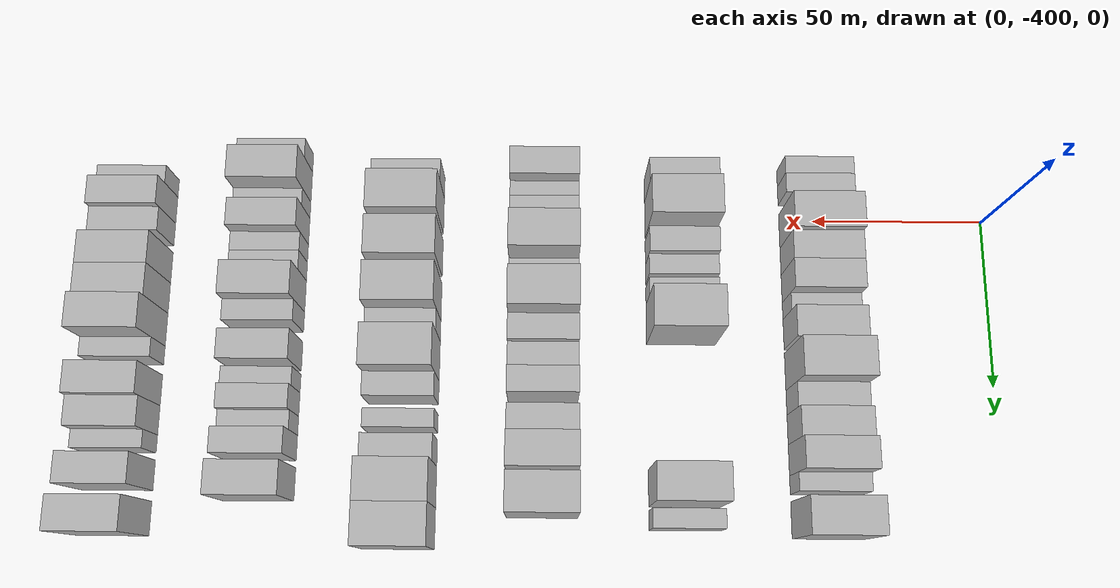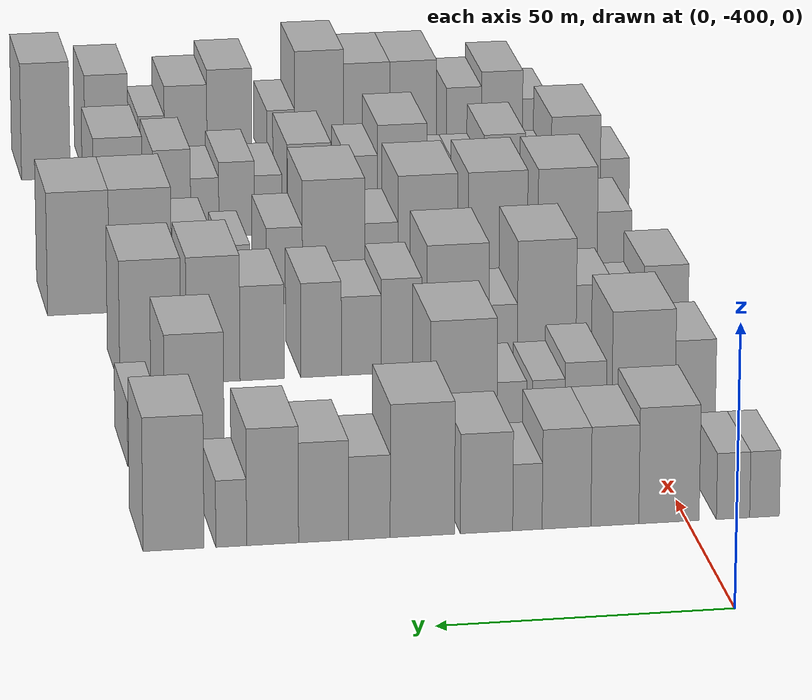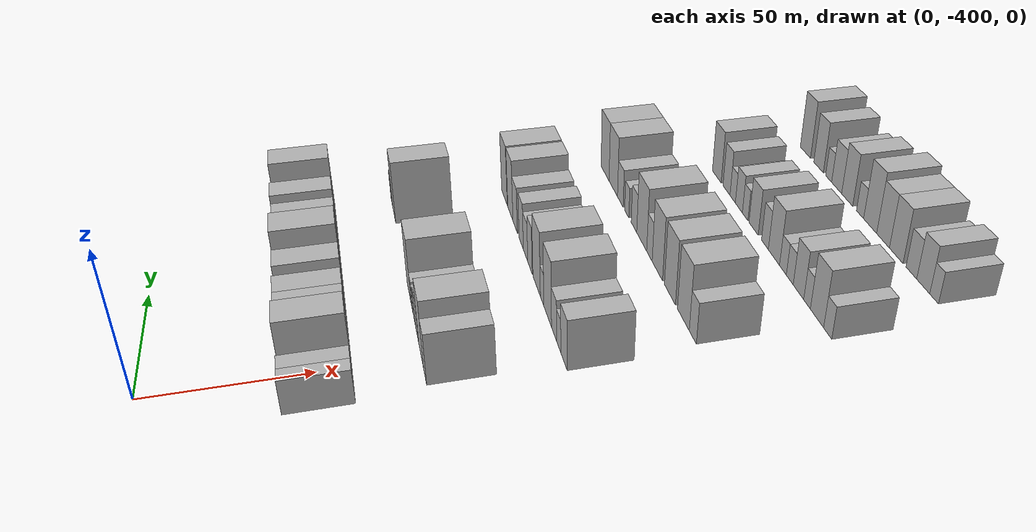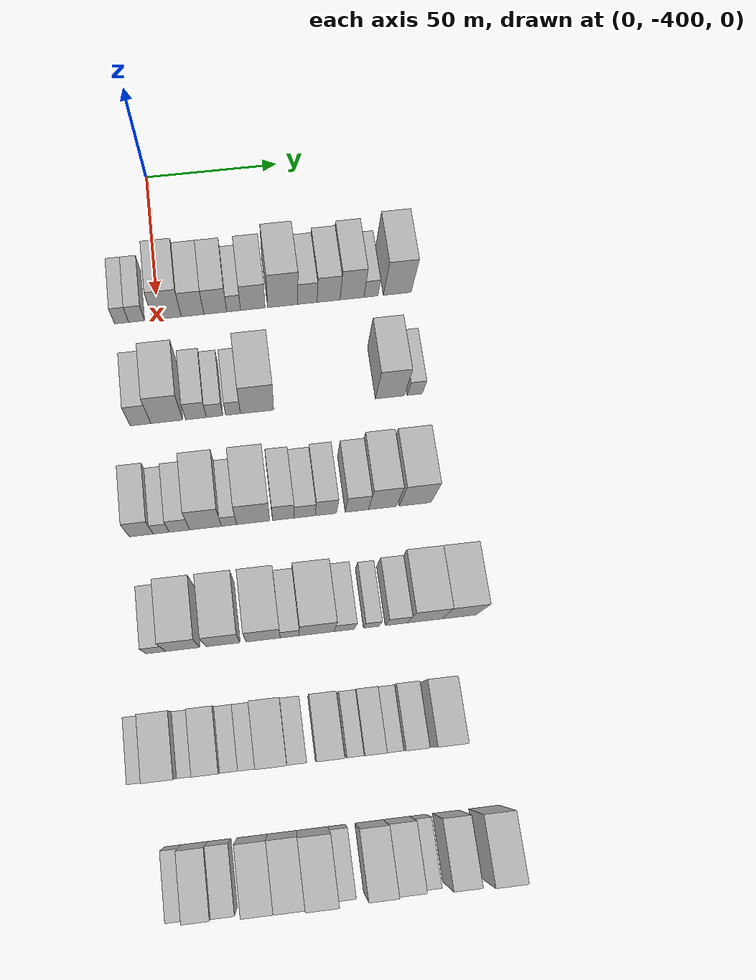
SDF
<sdf version="1.6">
 <world name="default">
  <model name="building_24">
   <static>1</static>
   <pose>50.0000 -413.3652 0 0.000000 0.000000 0.000000</pose>
   <link name="link">
    <pose>0 0 6.00 0 0 0</pose>
    <collision name="collision"><geometry><box><size>20.0000 5.1637 12.0000</size></box></geometry></collision>
    <visual name="visual">
     <cast_shadows>0</cast_shadows>
     <geometry><box><size>20.0000 5.1637 12.0000</size></box></geometry>
     <material>
      <script>
       <uri>model://HANNAS_wall/materials/scripts</uri>
       <uri>model://HANNAS_wall/materials/textures</uri>
       <name>vrc/HANNAS_wall</name>
      </script>
     </material>
    </visual>
   </link>
  </model>
  <model name="building_25">
   <static>1</static>
   <pose>50.0000 -407.8908 0 0.000000 0.000000 0.000000</pose>
   <link name="link">
    <pose>0 0 6.00 0 0 0</pose>
    <collision name="collision"><geometry><box><size>20.0000 5.7851 12.0000</size></box></geometry></collision>
    <visual name="visual">
     <cast_shadows>0</cast_shadows>
     <geometry><box><size>20.0000 5.7851 12.0000</size></box></geometry>
     <material>
      <script>
       <uri>model://HANNAS_wall/materials/scripts</uri>
       <uri>model://HANNAS_wall/materials/textures</uri>
       <name>vrc/HANNAS_wall</name>
      </script>
     </material>
    </visual>
   </link>
  </model>
  <model name="building_26">
   <static>1</static>
   <pose>50.0000 -396.7628 0 0.000000 0.000000 0.000000</pose>
   <link name="link">
    <pose>0 0 10.50 0 0 0</pose>
    <collision name="collision"><geometry><box><size>20.0000 10.4707 21.0000</size></box></geometry></collision>
    <visual name="visual">
     <cast_shadows>0</cast_shadows>
     <geometry><box><size>20.0000 10.4707 21.0000</size></box></geometry>
     <material>
      <script>
       <uri>model://HANNAS_wall/materials/scripts</uri>
       <uri>model://HANNAS_wall/materials/textures</uri>
       <name>vrc/HANNAS_wall</name>
      </script>
     </material>
    </visual>
   </link>
  </model>
  <model name="building_27">
   <static>1</static>
   <pose>50.0000 -387.3897 0 0.000000 0.000000 0.000000</pose>
   <link name="link">
    <pose>0 0 9.00 0 0 0</pose>
    <collision name="collision"><geometry><box><size>20.0000 8.2756 18.0000</size></box></geometry></collision>
    <visual name="visual">
     <cast_shadows>0</cast_shadows>
     <geometry><box><size>20.0000 8.2756 18.0000</size></box></geometry>
     <material>
      <script>
       <uri>model://HANNAS_wall/materials/scripts</uri>
       <uri>model://HANNAS_wall/materials/textures</uri>
       <name>vrc/HANNAS_wall</name>
      </script>
     </material>
    </visual>
   </link>
  </model>
  <model name="building_28">
   <static>1</static>
   <pose>50.0000 -379.0439 0 0.000000 0.000000 0.000000</pose>
   <link name="link">
    <pose>0 0 9.00 0 0 0</pose>
    <collision name="collision"><geometry><box><size>20.0000 8.4158 18.0000</size></box></geometry></collision>
    <visual name="visual">
     <cast_shadows>0</cast_shadows>
     <geometry><box><size>20.0000 8.4158 18.0000</size></box></geometry>
     <material>
      <script>
       <uri>model://HANNAS_wall/materials/scripts</uri>
       <uri>model://HANNAS_wall/materials/textures</uri>
       <name>vrc/HANNAS_wall</name>
      </script>
     </material>
    </visual>
   </link>
  </model>
  <model name="building_29">
   <static>1</static>
   <pose>50.0000 -372.3038 0 0.000000 0.000000 0.000000</pose>
   <link name="link">
    <pose>0 0 6.00 0 0 0</pose>
    <collision name="collision"><geometry><box><size>20.0000 5.0644 12.0000</size></box></geometry></collision>
    <visual name="visual">
     <cast_shadows>0</cast_shadows>
     <geometry><box><size>20.0000 5.0644 12.0000</size></box></geometry>
     <material>
      <script>
       <uri>model://HANNAS_wall/materials/scripts</uri>
       <uri>model://HANNAS_wall/materials/textures</uri>
       <name>vrc/HANNAS_wall</name>
      </script>
     </material>
    </visual>
   </link>
  </model>
  <model name="building_30">
   <static>1</static>
   <pose>50.0000 -365.2722 0 0.000000 0.000000 0.000000</pose>
   <link name="link">
    <pose>0 0 9.00 0 0 0</pose>
    <collision name="collision"><geometry><box><size>20.0000 8.9988 18.0000</size></box></geometry></collision>
    <visual name="visual">
     <cast_shadows>0</cast_shadows>
     <geometry><box><size>20.0000 8.9988 18.0000</size></box></geometry>
     <material>
      <script>
       <uri>model://HANNAS_wall/materials/scripts</uri>
       <uri>model://HANNAS_wall/materials/textures</uri>
       <name>vrc/HANNAS_wall</name>
      </script>
     </material>
    </visual>
   </link>
  </model>
  <model name="building_31">
   <static>1</static>
   <pose>50.0000 -354.2544 0 0.000000 0.000000 0.000000</pose>
   <link name="link">
    <pose>0 0 12.00 0 0 0</pose>
    <collision name="collision"><geometry><box><size>20.0000 11.0368 24.0000</size></box></geometry></collision>
    <visual name="visual">
     <cast_shadows>0</cast_shadows>
     <geometry><box><size>20.0000 11.0368 24.0000</size></box></geometry>
     <material>
      <script>
       <uri>model://HANNAS_wall/materials/scripts</uri>
       <uri>model://HANNAS_wall/materials/textures</uri>
       <name>vrc/HANNAS_wall</name>
      </script>
     </material>
    </visual>
   </link>
  </model>
  <model name="building_32">
   <static>1</static>
   <pose>50.0000 -345.1771 0 0.000000 0.000000 0.000000</pose>
   <link name="link">
    <pose>0 0 7.50 0 0 0</pose>
    <collision name="collision"><geometry><box><size>20.0000 7.1176 15.0000</size></box></geometry></collision>
    <visual name="visual">
     <cast_shadows>0</cast_shadows>
     <geometry><box><size>20.0000 7.1176 15.0000</size></box></geometry>
     <material>
      <script>
       <uri>model://HANNAS_wall/materials/scripts</uri>
       <uri>model://HANNAS_wall/materials/textures</uri>
       <name>vrc/HANNAS_wall</name>
      </script>
     </material>
    </visual>
   </link>
  </model>
  <model name="building_33">
   <static>1</static>
   <pose>50.0000 -337.3446 0 0.000000 0.000000 0.000000</pose>
   <link name="link">
    <pose>0 0 9.00 0 0 0</pose>
    <collision name="collision"><geometry><box><size>20.0000 8.5474 18.0000</size></box></geometry></collision>
    <visual name="visual">
     <cast_shadows>0</cast_shadows>
     <geometry><box><size>20.0000 8.5474 18.0000</size></box></geometry>
     <material>
      <script>
       <uri>model://HANNAS_wall/materials/scripts</uri>
       <uri>model://HANNAS_wall/materials/textures</uri>
       <name>vrc/HANNAS_wall</name>
      </script>
     </material>
    </visual>
   </link>
  </model>
  <model name="building_34">
   <static>1</static>
   <pose>50.0000 -328.6471 0 0.000000 0.000000 0.000000</pose>
   <link name="link">
    <pose>0 0 10.50 0 0 0</pose>
    <collision name="collision"><geometry><box><size>20.0000 8.8475 21.0000</size></box></geometry></collision>
    <visual name="visual">
     <cast_shadows>0</cast_shadows>
     <geometry><box><size>20.0000 8.8475 21.0000</size></box></geometry>
     <material>
      <script>
       <uri>model://HANNAS_wall/materials/scripts</uri>
       <uri>model://HANNAS_wall/materials/textures</uri>
       <name>vrc/HANNAS_wall</name>
      </script>
     </material>
    </visual>
   </link>
  </model>
  <model name="building_35">
   <static>1</static>
   <pose>50.0000 -321.6063 0 0.000000 0.000000 0.000000</pose>
   <link name="link">
    <pose>0 0 6.00 0 0 0</pose>
    <collision name="collision"><geometry><box><size>20.0000 5.2341 12.0000</size></box></geometry></collision>
    <visual name="visual">
     <cast_shadows>0</cast_shadows>
     <geometry><box><size>20.0000 5.2341 12.0000</size></box></geometry>
     <material>
      <script>
       <uri>model://HANNAS_wall/materials/scripts</uri>
       <uri>model://HANNAS_wall/materials/textures</uri>
       <name>vrc/HANNAS_wall</name>
      </script>
     </material>
    </visual>
   </link>
  </model>
  <model name="building_36">
   <static>1</static>
   <pose>50.0000 -311.8154 0 0.000000 0.000000 0.000000</pose>
   <link name="link">
    <pose>0 0 12.00 0 0 0</pose>
    <collision name="collision"><geometry><box><size>20.0000 10.3477 24.0000</size></box></geometry></collision>
    <visual name="visual">
     <cast_shadows>0</cast_shadows>
     <geometry><box><size>20.0000 10.3477 24.0000</size></box></geometry>
     <material>
      <script>
       <uri>model://HANNAS_wall/materials/scripts</uri>
       <uri>model://HANNAS_wall/materials/textures</uri>
       <name>vrc/HANNAS_wall</name>
      </script>
     </material>
    </visual>
   </link>
  </model>
  <model name="building_169">
   <static>1</static>
   <pose>90.0000 -409.2732 0 0.000000 0.000000 0.000000</pose>
   <link name="link">
    <pose>0 0 9.00 0 0 0</pose>
    <collision name="collision"><geometry><box><size>20.0000 7.2763 18.0000</size></box></geometry></collision>
    <visual name="visual">
     <cast_shadows>0</cast_shadows>
     <geometry><box><size>20.0000 7.2763 18.0000</size></box></geometry>
     <material>
      <script>
       <uri>model://HANNAS_wall/materials/scripts</uri>
       <uri>model://HANNAS_wall/materials/textures</uri>
       <name>vrc/HANNAS_wall</name>
      </script>
     </material>
    </visual>
   </link>
  </model>
  <model name="building_170">
   <static>1</static>
   <pose>90.0000 -399.9908 0 0.000000 0.000000 0.000000</pose>
   <link name="link">
    <pose>0 0 12.00 0 0 0</pose>
    <collision name="collision"><geometry><box><size>20.0000 11.2884 24.0000</size></box></geometry></collision>
    <visual name="visual">
     <cast_shadows>0</cast_shadows>
     <geometry><box><size>20.0000 11.2884 24.0000</size></box></geometry>
     <material>
      <script>
       <uri>model://HANNAS_wall/materials/scripts</uri>
       <uri>model://HANNAS_wall/materials/textures</uri>
       <name>vrc/HANNAS_wall</name>
      </script>
     </material>
    </visual>
   </link>
  </model>
  <model name="building_171">
   <static>1</static>
   <pose>90.0000 -389.6672 0 0.000000 0.000000 0.000000</pose>
   <link name="link">
    <pose>0 0 7.50 0 0 0</pose>
    <collision name="collision"><geometry><box><size>20.0000 7.3587 15.0000</size></box></geometry></collision>
    <visual name="visual">
     <cast_shadows>0</cast_shadows>
     <geometry><box><size>20.0000 7.3587 15.0000</size></box></geometry>
     <material>
      <script>
       <uri>model://HANNAS_wall/materials/scripts</uri>
       <uri>model://HANNAS_wall/materials/textures</uri>
       <name>vrc/HANNAS_wall</name>
      </script>
     </material>
    </visual>
   </link>
  </model>
  <model name="building_172">
   <static>1</static>
   <pose>90.0000 -383.0584 0 0.000000 0.000000 0.000000</pose>
   <link name="link">
    <pose>0 0 6.00 0 0 0</pose>
    <collision name="collision"><geometry><box><size>20.0000 5.8589 12.0000</size></box></geometry></collision>
    <visual name="visual">
     <cast_shadows>0</cast_shadows>
     <geometry><box><size>20.0000 5.8589 12.0000</size></box></geometry>
     <material>
      <script>
       <uri>model://HANNAS_wall/materials/scripts</uri>
       <uri>model://HANNAS_wall/materials/textures</uri>
       <name>vrc/HANNAS_wall</name>
      </script>
     </material>
    </visual>
   </link>
  </model>
  <model name="building_173">
   <static>1</static>
   <pose>90.0000 -376.4973 0 0.000000 0.000000 0.000000</pose>
   <link name="link">
    <pose>0 0 6.00 0 0 0</pose>
    <collision name="collision"><geometry><box><size>20.0000 5.2635 12.0000</size></box></geometry></collision>
    <visual name="visual">
     <cast_shadows>0</cast_shadows>
     <geometry><box><size>20.0000 5.2635 12.0000</size></box></geometry>
     <material>
      <script>
       <uri>model://HANNAS_wall/materials/scripts</uri>
       <uri>model://HANNAS_wall/materials/textures</uri>
       <name>vrc/HANNAS_wall</name>
      </script>
     </material>
    </visual>
   </link>
  </model>
  <model name="building_174">
   <static>1</static>
   <pose>90.0000 -367.9628 0 0.000000 0.000000 0.000000</pose>
   <link name="link">
    <pose>0 0 12.00 0 0 0</pose>
    <collision name="collision"><geometry><box><size>20.0000 11.8055 24.0000</size></box></geometry></collision>
    <visual name="visual">
     <cast_shadows>0</cast_shadows>
     <geometry><box><size>20.0000 11.8055 24.0000</size></box></geometry>
     <material>
      <script>
       <uri>model://HANNAS_wall/materials/scripts</uri>
       <uri>model://HANNAS_wall/materials/textures</uri>
       <name>vrc/HANNAS_wall</name>
      </script>
     </material>
    </visual>
   </link>
  </model>
  <model name="building_175">
   <static>1</static>
   <pose>90.0000 -320.4007 0 0.000000 0.000000 0.000000</pose>
   <link name="link">
    <pose>0 0 12.00 0 0 0</pose>
    <collision name="collision"><geometry><box><size>20.0000 10.4395 24.0000</size></box></geometry></collision>
    <visual name="visual">
     <cast_shadows>0</cast_shadows>
     <geometry><box><size>20.0000 10.4395 24.0000</size></box></geometry>
     <material>
      <script>
       <uri>model://HANNAS_wall/materials/scripts</uri>
       <uri>model://HANNAS_wall/materials/textures</uri>
       <name>vrc/HANNAS_wall</name>
      </script>
     </material>
    </visual>
   </link>
  </model>
  <model name="building_176">
   <static>1</static>
   <pose>90.0000 -311.4446 0 0.000000 0.000000 0.000000</pose>
   <link name="link">
    <pose>0 0 6.00 0 0 0</pose>
    <collision name="collision"><geometry><box><size>20.0000 5.4726 12.0000</size></box></geometry></collision>
    <visual name="visual">
     <cast_shadows>0</cast_shadows>
     <geometry><box><size>20.0000 5.4726 12.0000</size></box></geometry>
     <material>
      <script>
       <uri>model://HANNAS_wall/materials/scripts</uri>
       <uri>model://HANNAS_wall/materials/textures</uri>
       <name>vrc/HANNAS_wall</name>
      </script>
     </material>
    </visual>
   </link>
  </model>
  <model name="building_302">
   <static>1</static>
   <pose>130.0000 -411.8672 0 0.000000 0.000000 0.000000</pose>
   <link name="link">
    <pose>0 0 9.00 0 0 0</pose>
    <collision name="collision"><geometry><box><size>20.0000 8.1740 18.0000</size></box></geometry></collision>
    <visual name="visual">
     <cast_shadows>0</cast_shadows>
     <geometry><box><size>20.0000 8.1740 18.0000</size></box></geometry>
     <material>
      <script>
       <uri>model://HANNAS_wall/materials/scripts</uri>
       <uri>model://HANNAS_wall/materials/textures</uri>
       <name>vrc/HANNAS_wall</name>
      </script>
     </material>
    </visual>
   </link>
  </model>
  <model name="building_303">
   <static>1</static>
   <pose>130.0000 -405.0318 0 0.000000 0.000000 0.000000</pose>
   <link name="link">
    <pose>0 0 6.00 0 0 0</pose>
    <collision name="collision"><geometry><box><size>20.0000 5.4968 12.0000</size></box></geometry></collision>
    <visual name="visual">
     <cast_shadows>0</cast_shadows>
     <geometry><box><size>20.0000 5.4968 12.0000</size></box></geometry>
     <material>
      <script>
       <uri>model://HANNAS_wall/materials/scripts</uri>
       <uri>model://HANNAS_wall/materials/textures</uri>
       <name>vrc/HANNAS_wall</name>
      </script>
     </material>
    </visual>
   </link>
  </model>
  <model name="building_304">
   <static>1</static>
   <pose>130.0000 -398.7842 0 0.000000 0.000000 0.000000</pose>
   <link name="link">
    <pose>0 0 7.50 0 0 0</pose>
    <collision name="collision"><geometry><box><size>20.0000 6.9984 15.0000</size></box></geometry></collision>
    <visual name="visual">
     <cast_shadows>0</cast_shadows>
     <geometry><box><size>20.0000 6.9984 15.0000</size></box></geometry>
     <material>
      <script>
       <uri>model://HANNAS_wall/materials/scripts</uri>
       <uri>model://HANNAS_wall/materials/textures</uri>
       <name>vrc/HANNAS_wall</name>
      </script>
     </material>
    </visual>
   </link>
  </model>
  <model name="building_305">
   <static>1</static>
   <pose>130.0000 -389.8746 0 0.000000 0.000000 0.000000</pose>
   <link name="link">
    <pose>0 0 12.00 0 0 0</pose>
    <collision name="collision"><geometry><box><size>20.0000 10.8209 24.0000</size></box></geometry></collision>
    <visual name="visual">
     <cast_shadows>0</cast_shadows>
     <geometry><box><size>20.0000 10.8209 24.0000</size></box></geometry>
     <material>
      <script>
       <uri>model://HANNAS_wall/materials/scripts</uri>
       <uri>model://HANNAS_wall/materials/textures</uri>
       <name>vrc/HANNAS_wall</name>
      </script>
     </material>
    </visual>
   </link>
  </model>
  <model name="building_306">
   <static>1</static>
   <pose>130.0000 -381.8418 0 0.000000 0.000000 0.000000</pose>
   <link name="link">
    <pose>0 0 6.00 0 0 0</pose>
    <collision name="collision"><geometry><box><size>20.0000 5.2448 12.0000</size></box></geometry></collision>
    <visual name="visual">
     <cast_shadows>0</cast_shadows>
     <geometry><box><size>20.0000 5.2448 12.0000</size></box></geometry>
     <material>
      <script>
       <uri>model://HANNAS_wall/materials/scripts</uri>
       <uri>model://HANNAS_wall/materials/textures</uri>
       <name>vrc/HANNAS_wall</name>
      </script>
     </material>
    </visual>
   </link>
  </model>
  <model name="building_307">
   <static>1</static>
   <pose>130.0000 -373.5435 0 0.000000 0.000000 0.000000</pose>
   <link name="link">
    <pose>0 0 12.00 0 0 0</pose>
    <collision name="collision"><geometry><box><size>20.0000 11.3518 24.0000</size></box></geometry></collision>
    <visual name="visual">
     <cast_shadows>0</cast_shadows>
     <geometry><box><size>20.0000 11.3518 24.0000</size></box></geometry>
     <material>
      <script>
       <uri>model://HANNAS_wall/materials/scripts</uri>
       <uri>model://HANNAS_wall/materials/textures</uri>
       <name>vrc/HANNAS_wall</name>
      </script>
     </material>
    </visual>
   </link>
  </model>
  <model name="building_308">
   <static>1</static>
   <pose>130.0000 -363.1718 0 0.000000 0.000000 0.000000</pose>
   <link name="link">
    <pose>0 0 9.00 0 0 0</pose>
    <collision name="collision"><geometry><box><size>20.0000 7.3916 18.0000</size></box></geometry></collision>
    <visual name="visual">
     <cast_shadows>0</cast_shadows>
     <geometry><box><size>20.0000 7.3916 18.0000</size></box></geometry>
     <material>
      <script>
       <uri>model://HANNAS_wall/materials/scripts</uri>
       <uri>model://HANNAS_wall/materials/textures</uri>
       <name>vrc/HANNAS_wall</name>
      </script>
     </material>
    </visual>
   </link>
  </model>
  <model name="building_309">
   <static>1</static>
   <pose>130.0000 -355.8360 0 0.000000 0.000000 0.000000</pose>
   <link name="link">
    <pose>0 0 7.50 0 0 0</pose>
    <collision name="collision"><geometry><box><size>20.0000 7.2801 15.0000</size></box></geometry></collision>
    <visual name="visual">
     <cast_shadows>0</cast_shadows>
     <geometry><box><size>20.0000 7.2801 15.0000</size></box></geometry>
     <material>
      <script>
       <uri>model://HANNAS_wall/materials/scripts</uri>
       <uri>model://HANNAS_wall/materials/textures</uri>
       <name>vrc/HANNAS_wall</name>
      </script>
     </material>
    </visual>
   </link>
  </model>
  <model name="building_310">
   <static>1</static>
   <pose>130.0000 -348.4951 0 0.000000 0.000000 0.000000</pose>
   <link name="link">
    <pose>0 0 9.00 0 0 0</pose>
    <collision name="collision"><geometry><box><size>20.0000 7.4016 18.0000</size></box></geometry></collision>
    <visual name="visual">
     <cast_shadows>0</cast_shadows>
     <geometry><box><size>20.0000 7.4016 18.0000</size></box></geometry>
     <material>
      <script>
       <uri>model://HANNAS_wall/materials/scripts</uri>
       <uri>model://HANNAS_wall/materials/textures</uri>
       <name>vrc/HANNAS_wall</name>
      </script>
     </material>
    </visual>
   </link>
  </model>
  <model name="building_311">
   <static>1</static>
   <pose>130.0000 -337.7576 0 0.000000 0.000000 0.000000</pose>
   <link name="link">
    <pose>0 0 9.00 0 0 0</pose>
    <collision name="collision"><geometry><box><size>20.0000 8.0733 18.0000</size></box></geometry></collision>
    <visual name="visual">
     <cast_shadows>0</cast_shadows>
     <geometry><box><size>20.0000 8.0733 18.0000</size></box></geometry>
     <material>
      <script>
       <uri>model://HANNAS_wall/materials/scripts</uri>
       <uri>model://HANNAS_wall/materials/textures</uri>
       <name>vrc/HANNAS_wall</name>
      </script>
     </material>
    </visual>
   </link>
  </model>
  <model name="building_312">
   <static>1</static>
   <pose>130.0000 -328.8565 0 0.000000 0.000000 0.000000</pose>
   <link name="link">
    <pose>0 0 12.00 0 0 0</pose>
    <collision name="collision"><geometry><box><size>20.0000 9.7289 24.0000</size></box></geometry></collision>
    <visual name="visual">
     <cast_shadows>0</cast_shadows>
     <geometry><box><size>20.0000 9.7289 24.0000</size></box></geometry>
     <material>
      <script>
       <uri>model://HANNAS_wall/materials/scripts</uri>
       <uri>model://HANNAS_wall/materials/textures</uri>
       <name>vrc/HANNAS_wall</name>
      </script>
     </material>
    </visual>
   </link>
  </model>
  <model name="building_313">
   <static>1</static>
   <pose>130.0000 -317.4507 0 0.000000 0.000000 0.000000</pose>
   <link name="link">
    <pose>0 0 12.00 0 0 0</pose>
    <collision name="collision"><geometry><box><size>20.0000 11.0828 24.0000</size></box></geometry></collision>
    <visual name="visual">
     <cast_shadows>0</cast_shadows>
     <geometry><box><size>20.0000 11.0828 24.0000</size></box></geometry>
     <material>
      <script>
       <uri>model://HANNAS_wall/materials/scripts</uri>
       <uri>model://HANNAS_wall/materials/textures</uri>
       <name>vrc/HANNAS_wall</name>
      </script>
     </material>
    </visual>
   </link>
  </model>
  <model name="building_444">
   <static>1</static>
   <pose>170.0000 -409.8618 0 0.000000 0.000000 0.000000</pose>
   <link name="link">
    <pose>0 0 7.50 0 0 0</pose>
    <collision name="collision"><geometry><box><size>20.0000 6.5341 15.0000</size></box></geometry></collision>
    <visual name="visual">
     <cast_shadows>0</cast_shadows>
     <geometry><box><size>20.0000 6.5341 15.0000</size></box></geometry>
     <material>
      <script>
       <uri>model://HANNAS_wall/materials/scripts</uri>
       <uri>model://HANNAS_wall/materials/textures</uri>
       <name>vrc/HANNAS_wall</name>
      </script>
     </material>
    </visual>
   </link>
  </model>
  <model name="building_445">
   <static>1</static>
   <pose>170.0000 -400.9536 0 0.000000 0.000000 0.000000</pose>
   <link name="link">
    <pose>0 0 12.00 0 0 0</pose>
    <collision name="collision"><geometry><box><size>20.0000 11.2821 24.0000</size></box></geometry></collision>
    <visual name="visual">
     <cast_shadows>0</cast_shadows>
     <geometry><box><size>20.0000 11.2821 24.0000</size></box></geometry>
     <material>
      <script>
       <uri>model://HANNAS_wall/materials/scripts</uri>
       <uri>model://HANNAS_wall/materials/textures</uri>
       <name>vrc/HANNAS_wall</name>
      </script>
     </material>
    </visual>
   </link>
  </model>
  <model name="building_446">
   <static>1</static>
   <pose>170.0000 -387.6839 0 0.000000 0.000000 0.000000</pose>
   <link name="link">
    <pose>0 0 12.00 0 0 0</pose>
    <collision name="collision"><geometry><box><size>20.0000 11.2574 24.0000</size></box></geometry></collision>
    <visual name="visual">
     <cast_shadows>0</cast_shadows>
     <geometry><box><size>20.0000 11.2574 24.0000</size></box></geometry>
     <material>
      <script>
       <uri>model://HANNAS_wall/materials/scripts</uri>
       <uri>model://HANNAS_wall/materials/textures</uri>
       <name>vrc/HANNAS_wall</name>
      </script>
     </material>
    </visual>
   </link>
  </model>
  <model name="building_447">
   <static>1</static>
   <pose>170.0000 -374.4189 0 0.000000 0.000000 0.000000</pose>
   <link name="link">
    <pose>0 0 12.00 0 0 0</pose>
    <collision name="collision"><geometry><box><size>20.0000 11.2726 24.0000</size></box></geometry></collision>
    <visual name="visual">
     <cast_shadows>0</cast_shadows>
     <geometry><box><size>20.0000 11.2726 24.0000</size></box></geometry>
     <material>
      <script>
       <uri>model://HANNAS_wall/materials/scripts</uri>
       <uri>model://HANNAS_wall/materials/textures</uri>
       <name>vrc/HANNAS_wall</name>
      </script>
     </material>
    </visual>
   </link>
  </model>
  <model name="building_448">
   <static>1</static>
   <pose>170.0000 -365.6524 0 0.000000 0.000000 0.000000</pose>
   <link name="link">
    <pose>0 0 7.50 0 0 0</pose>
    <collision name="collision"><geometry><box><size>20.0000 6.2603 15.0000</size></box></geometry></collision>
    <visual name="visual">
     <cast_shadows>0</cast_shadows>
     <geometry><box><size>20.0000 6.2603 15.0000</size></box></geometry>
     <material>
      <script>
       <uri>model://HANNAS_wall/materials/scripts</uri>
       <uri>model://HANNAS_wall/materials/textures</uri>
       <name>vrc/HANNAS_wall</name>
      </script>
     </material>
    </visual>
   </link>
  </model>
  <model name="building_449">
   <static>1</static>
   <pose>170.0000 -356.6499 0 0.000000 0.000000 0.000000</pose>
   <link name="link">
    <pose>0 0 12.00 0 0 0</pose>
    <collision name="collision"><geometry><box><size>20.0000 11.7447 24.0000</size></box></geometry></collision>
    <visual name="visual">
     <cast_shadows>0</cast_shadows>
     <geometry><box><size>20.0000 11.7447 24.0000</size></box></geometry>
     <material>
      <script>
       <uri>model://HANNAS_wall/materials/scripts</uri>
       <uri>model://HANNAS_wall/materials/textures</uri>
       <name>vrc/HANNAS_wall</name>
      </script>
     </material>
    </visual>
   </link>
  </model>
  <model name="building_450">
   <static>1</static>
   <pose>170.0000 -347.3768 0 0.000000 0.000000 0.000000</pose>
   <link name="link">
    <pose>0 0 7.50 0 0 0</pose>
    <collision name="collision"><geometry><box><size>20.0000 6.8015 15.0000</size></box></geometry></collision>
    <visual name="visual">
     <cast_shadows>0</cast_shadows>
     <geometry><box><size>20.0000 6.8015 15.0000</size></box></geometry>
     <material>
      <script>
       <uri>model://HANNAS_wall/materials/scripts</uri>
       <uri>model://HANNAS_wall/materials/textures</uri>
       <name>vrc/HANNAS_wall</name>
      </script>
     </material>
    </visual>
   </link>
  </model>
  <model name="building_451">
   <static>1</static>
   <pose>170.0000 -338.3370 0 0.000000 0.000000 0.000000</pose>
   <link name="link">
    <pose>0 0 6.00 0 0 0</pose>
    <collision name="collision"><geometry><box><size>20.0000 5.2780 12.0000</size></box></geometry></collision>
    <visual name="visual">
     <cast_shadows>0</cast_shadows>
     <geometry><box><size>20.0000 5.2780 12.0000</size></box></geometry>
     <material>
      <script>
       <uri>model://HANNAS_wall/materials/scripts</uri>
       <uri>model://HANNAS_wall/materials/textures</uri>
       <name>vrc/HANNAS_wall</name>
      </script>
     </material>
    </visual>
   </link>
  </model>
  <model name="building_452">
   <static>1</static>
   <pose>170.0000 -329.9541 0 0.000000 0.000000 0.000000</pose>
   <link name="link">
    <pose>0 0 7.50 0 0 0</pose>
    <collision name="collision"><geometry><box><size>20.0000 7.4879 15.0000</size></box></geometry></collision>
    <visual name="visual">
     <cast_shadows>0</cast_shadows>
     <geometry><box><size>20.0000 7.4879 15.0000</size></box></geometry>
     <material>
      <script>
       <uri>model://HANNAS_wall/materials/scripts</uri>
       <uri>model://HANNAS_wall/materials/textures</uri>
       <name>vrc/HANNAS_wall</name>
      </script>
     </material>
    </visual>
   </link>
  </model>
  <model name="building_453">
   <static>1</static>
   <pose>170.0000 -320.3863 0 0.000000 0.000000 0.000000</pose>
   <link name="link">
    <pose>0 0 12.00 0 0 0</pose>
    <collision name="collision"><geometry><box><size>20.0000 11.6478 24.0000</size></box></geometry></collision>
    <visual name="visual">
     <cast_shadows>0</cast_shadows>
     <geometry><box><size>20.0000 11.6478 24.0000</size></box></geometry>
     <material>
      <script>
       <uri>model://HANNAS_wall/materials/scripts</uri>
       <uri>model://HANNAS_wall/materials/textures</uri>
       <name>vrc/HANNAS_wall</name>
      </script>
     </material>
    </visual>
   </link>
  </model>
  <model name="building_454">
   <static>1</static>
   <pose>170.0000 -308.7849 0 0.000000 0.000000 0.000000</pose>
   <link name="link">
    <pose>0 0 12.00 0 0 0</pose>
    <collision name="collision"><geometry><box><size>20.0000 11.5550 24.0000</size></box></geometry></collision>
    <visual name="visual">
     <cast_shadows>0</cast_shadows>
     <geometry><box><size>20.0000 11.5550 24.0000</size></box></geometry>
     <material>
      <script>
       <uri>model://HANNAS_wall/materials/scripts</uri>
       <uri>model://HANNAS_wall/materials/textures</uri>
       <name>vrc/HANNAS_wall</name>
      </script>
     </material>
    </visual>
   </link>
  </model>
  <model name="building_588">
   <static>1</static>
   <pose>210.0000 -417.4976 0 0.000000 0.000000 0.000000</pose>
   <link name="link">
    <pose>0 0 6.00 0 0 0</pose>
    <collision name="collision"><geometry><box><size>20.0000 5.6993 12.0000</size></box></geometry></collision>
    <visual name="visual">
     <cast_shadows>0</cast_shadows>
     <geometry><box><size>20.0000 5.6993 12.0000</size></box></geometry>
     <material>
      <script>
       <uri>model://HANNAS_wall/materials/scripts</uri>
       <uri>model://HANNAS_wall/materials/textures</uri>
       <name>vrc/HANNAS_wall</name>
      </script>
     </material>
    </visual>
   </link>
  </model>
  <model name="building_589">
   <static>1</static>
   <pose>210.0000 -409.8278 0 0.000000 0.000000 0.000000</pose>
   <link name="link">
    <pose>0 0 10.50 0 0 0</pose>
    <collision name="collision"><geometry><box><size>20.0000 9.6403 21.0000</size></box></geometry></collision>
    <visual name="visual">
     <cast_shadows>0</cast_shadows>
     <geometry><box><size>20.0000 9.6403 21.0000</size></box></geometry>
     <material>
      <script>
       <uri>model://HANNAS_wall/materials/scripts</uri>
       <uri>model://HANNAS_wall/materials/textures</uri>
       <name>vrc/HANNAS_wall</name>
      </script>
     </material>
    </visual>
   </link>
  </model>
  <model name="building_590">
   <static>1</static>
   <pose>210.0000 -402.4843 0 0.000000 0.000000 0.000000</pose>
   <link name="link">
    <pose>0 0 6.00 0 0 0</pose>
    <collision name="collision"><geometry><box><size>20.0000 5.0467 12.0000</size></box></geometry></collision>
    <visual name="visual">
     <cast_shadows>0</cast_shadows>
     <geometry><box><size>20.0000 5.0467 12.0000</size></box></geometry>
     <material>
      <script>
       <uri>model://HANNAS_wall/materials/scripts</uri>
       <uri>model://HANNAS_wall/materials/textures</uri>
       <name>vrc/HANNAS_wall</name>
      </script>
     </material>
    </visual>
   </link>
  </model>
  <model name="building_591">
   <static>1</static>
   <pose>210.0000 -395.8823 0 0.000000 0.000000 0.000000</pose>
   <link name="link">
    <pose>0 0 9.00 0 0 0</pose>
    <collision name="collision"><geometry><box><size>20.0000 8.1575 18.0000</size></box></geometry></collision>
    <visual name="visual">
     <cast_shadows>0</cast_shadows>
     <geometry><box><size>20.0000 8.1575 18.0000</size></box></geometry>
     <material>
      <script>
       <uri>model://HANNAS_wall/materials/scripts</uri>
       <uri>model://HANNAS_wall/materials/textures</uri>
       <name>vrc/HANNAS_wall</name>
      </script>
     </material>
    </visual>
   </link>
  </model>
  <model name="building_592">
   <static>1</static>
   <pose>210.0000 -389.0358 0 0.000000 0.000000 0.000000</pose>
   <link name="link">
    <pose>0 0 6.00 0 0 0</pose>
    <collision name="collision"><geometry><box><size>20.0000 5.5354 12.0000</size></box></geometry></collision>
    <visual name="visual">
     <cast_shadows>0</cast_shadows>
     <geometry><box><size>20.0000 5.5354 12.0000</size></box></geometry>
     <material>
      <script>
       <uri>model://HANNAS_wall/materials/scripts</uri>
       <uri>model://HANNAS_wall/materials/textures</uri>
       <name>vrc/HANNAS_wall</name>
      </script>
     </material>
    </visual>
   </link>
  </model>
  <model name="building_593">
   <static>1</static>
   <pose>210.0000 -383.4498 0 0.000000 0.000000 0.000000</pose>
   <link name="link">
    <pose>0 0 6.00 0 0 0</pose>
    <collision name="collision"><geometry><box><size>20.0000 5.6367 12.0000</size></box></geometry></collision>
    <visual name="visual">
     <cast_shadows>0</cast_shadows>
     <geometry><box><size>20.0000 5.6367 12.0000</size></box></geometry>
     <material>
      <script>
       <uri>model://HANNAS_wall/materials/scripts</uri>
       <uri>model://HANNAS_wall/materials/textures</uri>
       <name>vrc/HANNAS_wall</name>
      </script>
     </material>
    </visual>
   </link>
  </model>
  <model name="building_594">
   <static>1</static>
   <pose>210.0000 -375.8559 0 0.000000 0.000000 0.000000</pose>
   <link name="link">
    <pose>0 0 10.50 0 0 0</pose>
    <collision name="collision"><geometry><box><size>20.0000 9.5510 21.0000</size></box></geometry></collision>
    <visual name="visual">
     <cast_shadows>0</cast_shadows>
     <geometry><box><size>20.0000 9.5510 21.0000</size></box></geometry>
     <material>
      <script>
       <uri>model://HANNAS_wall/materials/scripts</uri>
       <uri>model://HANNAS_wall/materials/textures</uri>
       <name>vrc/HANNAS_wall</name>
      </script>
     </material>
    </visual>
   </link>
  </model>
  <model name="building_595">
   <static>1</static>
   <pose>210.0000 -368.0488 0 0.000000 0.000000 0.000000</pose>
   <link name="link">
    <pose>0 0 7.50 0 0 0</pose>
    <collision name="collision"><geometry><box><size>20.0000 6.0631 15.0000</size></box></geometry></collision>
    <visual name="visual">
     <cast_shadows>0</cast_shadows>
     <geometry><box><size>20.0000 6.0631 15.0000</size></box></geometry>
     <material>
      <script>
       <uri>model://HANNAS_wall/materials/scripts</uri>
       <uri>model://HANNAS_wall/materials/textures</uri>
       <name>vrc/HANNAS_wall</name>
      </script>
     </material>
    </visual>
   </link>
  </model>
  <model name="building_596">
   <static>1</static>
   <pose>210.0000 -357.7528 0 0.000000 0.000000 0.000000</pose>
   <link name="link">
    <pose>0 0 9.00 0 0 0</pose>
    <collision name="collision"><geometry><box><size>20.0000 8.5290 18.0000</size></box></geometry></collision>
    <visual name="visual">
     <cast_shadows>0</cast_shadows>
     <geometry><box><size>20.0000 8.5290 18.0000</size></box></geometry>
     <material>
      <script>
       <uri>model://HANNAS_wall/materials/scripts</uri>
       <uri>model://HANNAS_wall/materials/textures</uri>
       <name>vrc/HANNAS_wall</name>
      </script>
     </material>
    </visual>
   </link>
  </model>
  <model name="building_597">
   <static>1</static>
   <pose>210.0000 -349.8161 0 0.000000 0.000000 0.000000</pose>
   <link name="link">
    <pose>0 0 6.00 0 0 0</pose>
    <collision name="collision"><geometry><box><size>20.0000 5.3444 12.0000</size></box></geometry></collision>
    <visual name="visual">
     <cast_shadows>0</cast_shadows>
     <geometry><box><size>20.0000 5.3444 12.0000</size></box></geometry>
     <material>
      <script>
       <uri>model://HANNAS_wall/materials/scripts</uri>
       <uri>model://HANNAS_wall/materials/textures</uri>
       <name>vrc/HANNAS_wall</name>
      </script>
     </material>
    </visual>
   </link>
  </model>
  <model name="building_598">
   <static>1</static>
   <pose>210.0000 -343.6980 0 0.000000 0.000000 0.000000</pose>
   <link name="link">
    <pose>0 0 7.50 0 0 0</pose>
    <collision name="collision"><geometry><box><size>20.0000 6.8919 15.0000</size></box></geometry></collision>
    <visual name="visual">
     <cast_shadows>0</cast_shadows>
     <geometry><box><size>20.0000 6.8919 15.0000</size></box></geometry>
     <material>
      <script>
       <uri>model://HANNAS_wall/materials/scripts</uri>
       <uri>model://HANNAS_wall/materials/textures</uri>
       <name>vrc/HANNAS_wall</name>
      </script>
     </material>
    </visual>
   </link>
  </model>
  <model name="building_599">
   <static>1</static>
   <pose>210.0000 -337.5312 0 0.000000 0.000000 0.000000</pose>
   <link name="link">
    <pose>0 0 6.00 0 0 0</pose>
    <collision name="collision"><geometry><box><size>20.0000 5.4417 12.0000</size></box></geometry></collision>
    <visual name="visual">
     <cast_shadows>0</cast_shadows>
     <geometry><box><size>20.0000 5.4417 12.0000</size></box></geometry>
     <material>
      <script>
       <uri>model://HANNAS_wall/materials/scripts</uri>
       <uri>model://HANNAS_wall/materials/textures</uri>
       <name>vrc/HANNAS_wall</name>
      </script>
     </material>
    </visual>
   </link>
  </model>
  <model name="building_600">
   <static>1</static>
   <pose>210.0000 -331.1725 0 0.000000 0.000000 0.000000</pose>
   <link name="link">
    <pose>0 0 9.00 0 0 0</pose>
    <collision name="collision"><geometry><box><size>20.0000 7.2758 18.0000</size></box></geometry></collision>
    <visual name="visual">
     <cast_shadows>0</cast_shadows>
     <geometry><box><size>20.0000 7.2758 18.0000</size></box></geometry>
     <material>
      <script>
       <uri>model://HANNAS_wall/materials/scripts</uri>
       <uri>model://HANNAS_wall/materials/textures</uri>
       <name>vrc/HANNAS_wall</name>
      </script>
     </material>
    </visual>
   </link>
  </model>
  <model name="building_601">
   <static>1</static>
   <pose>210.0000 -320.8194 0 0.000000 0.000000 0.000000</pose>
   <link name="link">
    <pose>0 0 10.50 0 0 0</pose>
    <collision name="collision"><geometry><box><size>20.0000 9.4303 21.0000</size></box></geometry></collision>
    <visual name="visual">
     <cast_shadows>0</cast_shadows>
     <geometry><box><size>20.0000 9.4303 21.0000</size></box></geometry>
     <material>
      <script>
       <uri>model://HANNAS_wall/materials/scripts</uri>
       <uri>model://HANNAS_wall/materials/textures</uri>
       <name>vrc/HANNAS_wall</name>
      </script>
     </material>
    </visual>
   </link>
  </model>
  <model name="building_728">
   <static>1</static>
   <pose>250.0000 -409.0895 0 0.000000 0.000000 0.000000</pose>
   <link name="link">
    <pose>0 0 6.00 0 0 0</pose>
    <collision name="collision"><geometry><box><size>20.0000 5.3898 12.0000</size></box></geometry></collision>
    <visual name="visual">
     <cast_shadows>0</cast_shadows>
     <geometry><box><size>20.0000 5.3898 12.0000</size></box></geometry>
     <material>
      <script>
       <uri>model://HANNAS_wall/materials/scripts</uri>
       <uri>model://HANNAS_wall/materials/textures</uri>
       <name>vrc/HANNAS_wall</name>
      </script>
     </material>
    </visual>
   </link>
  </model>
  <model name="building_729">
   <static>1</static>
   <pose>250.0000 -402.2439 0 0.000000 0.000000 0.000000</pose>
   <link name="link">
    <pose>0 0 9.00 0 0 0</pose>
    <collision name="collision"><geometry><box><size>20.0000 8.3015 18.0000</size></box></geometry></collision>
    <visual name="visual">
     <cast_shadows>0</cast_shadows>
     <geometry><box><size>20.0000 8.3015 18.0000</size></box></geometry>
     <material>
      <script>
       <uri>model://HANNAS_wall/materials/scripts</uri>
       <uri>model://HANNAS_wall/materials/textures</uri>
       <name>vrc/HANNAS_wall</name>
      </script>
     </material>
    </visual>
   </link>
  </model>
  <model name="building_730">
   <static>1</static>
   <pose>250.0000 -394.5615 0 0.000000 0.000000 0.000000</pose>
   <link name="link">
    <pose>0 0 7.50 0 0 0</pose>
    <collision name="collision"><geometry><box><size>20.0000 7.0632 15.0000</size></box></geometry></collision>
    <visual name="visual">
     <cast_shadows>0</cast_shadows>
     <geometry><box><size>20.0000 7.0632 15.0000</size></box></geometry>
     <material>
      <script>
       <uri>model://HANNAS_wall/materials/scripts</uri>
       <uri>model://HANNAS_wall/materials/textures</uri>
       <name>vrc/HANNAS_wall</name>
      </script>
     </material>
    </visual>
   </link>
  </model>
  <model name="building_731">
   <static>1</static>
   <pose>250.0000 -384.3297 0 0.000000 0.000000 0.000000</pose>
   <link name="link">
    <pose>0 0 10.50 0 0 0</pose>
    <collision name="collision"><geometry><box><size>20.0000 9.4004 21.0000</size></box></geometry></collision>
    <visual name="visual">
     <cast_shadows>0</cast_shadows>
     <geometry><box><size>20.0000 9.4004 21.0000</size></box></geometry>
     <material>
      <script>
       <uri>model://HANNAS_wall/materials/scripts</uri>
       <uri>model://HANNAS_wall/materials/textures</uri>
       <name>vrc/HANNAS_wall</name>
      </script>
     </material>
    </visual>
   </link>
  </model>
  <model name="building_732">
   <static>1</static>
   <pose>250.0000 -375.0160 0 0.000000 0.000000 0.000000</pose>
   <link name="link">
    <pose>0 0 10.50 0 0 0</pose>
    <collision name="collision"><geometry><box><size>20.0000 9.2270 21.0000</size></box></geometry></collision>
    <visual name="visual">
     <cast_shadows>0</cast_shadows>
     <geometry><box><size>20.0000 9.2270 21.0000</size></box></geometry>
     <material>
      <script>
       <uri>model://HANNAS_wall/materials/scripts</uri>
       <uri>model://HANNAS_wall/materials/textures</uri>
       <name>vrc/HANNAS_wall</name>
      </script>
     </material>
    </visual>
   </link>
  </model>
  <model name="building_733">
   <static>1</static>
   <pose>250.0000 -365.5024 0 0.000000 0.000000 0.000000</pose>
   <link name="link">
    <pose>0 0 12.00 0 0 0</pose>
    <collision name="collision"><geometry><box><size>20.0000 9.8001 24.0000</size></box></geometry></collision>
    <visual name="visual">
     <cast_shadows>0</cast_shadows>
     <geometry><box><size>20.0000 9.8001 24.0000</size></box></geometry>
     <material>
      <script>
       <uri>model://HANNAS_wall/materials/scripts</uri>
       <uri>model://HANNAS_wall/materials/textures</uri>
       <name>vrc/HANNAS_wall</name>
      </script>
     </material>
    </visual>
   </link>
  </model>
  <model name="building_734">
   <static>1</static>
   <pose>250.0000 -357.8221 0 0.000000 0.000000 0.000000</pose>
   <link name="link">
    <pose>0 0 6.00 0 0 0</pose>
    <collision name="collision"><geometry><box><size>20.0000 5.5605 12.0000</size></box></geometry></collision>
    <visual name="visual">
     <cast_shadows>0</cast_shadows>
     <geometry><box><size>20.0000 5.5605 12.0000</size></box></geometry>
     <material>
      <script>
       <uri>model://HANNAS_wall/materials/scripts</uri>
       <uri>model://HANNAS_wall/materials/textures</uri>
       <name>vrc/HANNAS_wall</name>
      </script>
     </material>
    </visual>
   </link>
  </model>
  <model name="building_735">
   <static>1</static>
   <pose>250.0000 -347.5582 0 0.000000 0.000000 0.000000</pose>
   <link name="link">
    <pose>0 0 10.50 0 0 0</pose>
    <collision name="collision"><geometry><box><size>20.0000 8.9672 21.0000</size></box></geometry></collision>
    <visual name="visual">
     <cast_shadows>0</cast_shadows>
     <geometry><box><size>20.0000 8.9672 21.0000</size></box></geometry>
     <material>
      <script>
       <uri>model://HANNAS_wall/materials/scripts</uri>
       <uri>model://HANNAS_wall/materials/textures</uri>
       <name>vrc/HANNAS_wall</name>
      </script>
     </material>
    </visual>
   </link>
  </model>
  <model name="building_736">
   <static>1</static>
   <pose>250.0000 -338.8391 0 0.000000 0.000000 0.000000</pose>
   <link name="link">
    <pose>0 0 9.00 0 0 0</pose>
    <collision name="collision"><geometry><box><size>20.0000 8.4710 18.0000</size></box></geometry></collision>
    <visual name="visual">
     <cast_shadows>0</cast_shadows>
     <geometry><box><size>20.0000 8.4710 18.0000</size></box></geometry>
     <material>
      <script>
       <uri>model://HANNAS_wall/materials/scripts</uri>
       <uri>model://HANNAS_wall/materials/textures</uri>
       <name>vrc/HANNAS_wall</name>
      </script>
     </material>
    </visual>
   </link>
  </model>
  <model name="building_737">
   <static>1</static>
   <pose>250.0000 -332.0006 0 0.000000 0.000000 0.000000</pose>
   <link name="link">
    <pose>0 0 6.00 0 0 0</pose>
    <collision name="collision"><geometry><box><size>20.0000 5.2060 12.0000</size></box></geometry></collision>
    <visual name="visual">
     <cast_shadows>0</cast_shadows>
     <geometry><box><size>20.0000 5.2060 12.0000</size></box></geometry>
     <material>
      <script>
       <uri>model://HANNAS_wall/materials/scripts</uri>
       <uri>model://HANNAS_wall/materials/textures</uri>
       <name>vrc/HANNAS_wall</name>
      </script>
     </material>
    </visual>
   </link>
  </model>
  <model name="building_738">
   <static>1</static>
   <pose>250.0000 -323.1128 0 0.000000 0.000000 0.000000</pose>
   <link name="link">
    <pose>0 0 10.50 0 0 0</pose>
    <collision name="collision"><geometry><box><size>20.0000 8.5695 21.0000</size></box></geometry></collision>
    <visual name="visual">
     <cast_shadows>0</cast_shadows>
     <geometry><box><size>20.0000 8.5695 21.0000</size></box></geometry>
     <material>
      <script>
       <uri>model://HANNAS_wall/materials/scripts</uri>
       <uri>model://HANNAS_wall/materials/textures</uri>
       <name>vrc/HANNAS_wall</name>
      </script>
     </material>
    </visual>
   </link>
  </model>
  <model name="building_739">
   <static>1</static>
   <pose>250.0000 -311.0069 0 0.000000 0.000000 0.000000</pose>
   <link name="link">
    <pose>0 0 12.00 0 0 0</pose>
    <collision name="collision"><geometry><box><size>20.0000 9.6422 24.0000</size></box></geometry></collision>
    <visual name="visual">
     <cast_shadows>0</cast_shadows>
     <geometry><box><size>20.0000 9.6422 24.0000</size></box></geometry>
     <material>
      <script>
       <uri>model://HANNAS_wall/materials/scripts</uri>
       <uri>model://HANNAS_wall/materials/textures</uri>
       <name>vrc/HANNAS_wall</name>
      </script>
     </material>
    </visual>
   </link>
  </model>
 </world>
</sdf>
